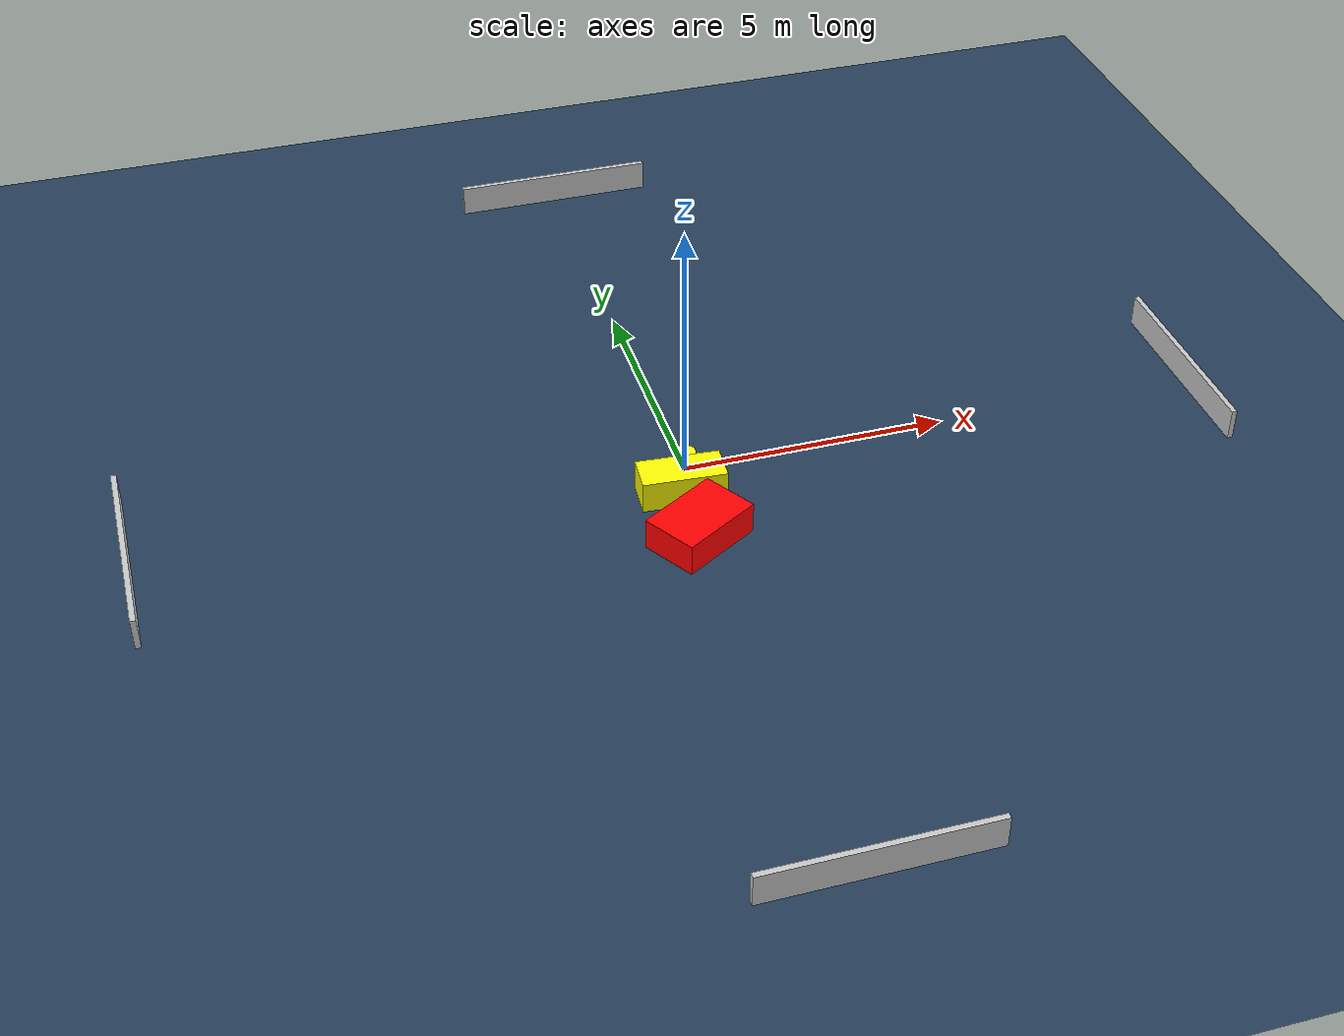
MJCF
<?xml version="1.0" ?>
<mujoco model="generated_environment">
  <option timestep="0.01" integrator="RK4" cone="elliptic"/>
  <default>
    <geom density="1"/>
  </default>
  <asset>
    <texture builtin="gradient" height="3072" name="skybox" rgb1="0.3 0.5 0.7" rgb2="0 0 0" type="skybox" width="512"/>
    <texture builtin="checker" height="300" name="groundplane" rgb1="0.2 0.3 0.4" rgb2="0.1 0.2 0.3" type="2d" width="300"/>
    <material name="groundplane" reflectance="0.2" texrepeat="5 5" texture="groundplane"/>
  </asset>
  <worldbody>
    <light dir="0 0 -1" directional="true" pos="0 0 1.5"/>
    <geom condim="3" friction="0.5 0.005 0.001" material="groundplane" name="floor" pos="0 0 0" size="0 0 0.05" type="plane"/>
    <body name="walls">
      <geom name="wall_1" condim="4" pos="-10.0 0.0 0.3" rgba="0.800000011920929 0.800000011920929 0.800000011920929 1.0" size="0.05 2.0 0.3" type="box"/>
      <geom name="wall_2" condim="4" pos="10.0 0.0 0.3" rgba="0.800000011920929 0.800000011920929 0.800000011920929 1.0" size="0.05 2.0 0.3" type="box"/>
      <geom name="wall_3" condim="4" pos="0.0 -10.0 0.3" rgba="0.800000011920929 0.800000011920929 0.800000011920929 1.0" size="2.0 0.05 0.3" type="box"/>
      <geom name="wall_4" condim="4" pos="0.0 10.0 0.3" rgba="0.800000011920929 0.800000011920929 0.800000011920929 1.0" size="2.0 0.05 0.3" type="box"/>
    </body>
    <body name="robot">
      <joint name="joint_x" type="slide" pos="0 0 0" axis="1 0 0"/>
      <joint name="joint_y" type="slide" pos="0 0 0" axis="0 1 0"/>
      <geom name="robot" type="cylinder" pos="0.0 0.0 0.2" size="0.2 0.2 0.0" mass="5.0" friction="1.0 0.005 0.0001" condim="4" rgba="1.0 1.0 0.0 1.0"/>
    </body>
    <body name="obstacle_1_movable">
      <geom name="obstacle_1_movable" condim="4" pos="-0.2728753161286325 -0.6810566695043705 0.3" euler="0 0 176.05697537356897" friction="0.0 0.005 0.001" rgba="1.0 1.0 0.0 1.0" size="0.7774839465614656 0.35001977263149064 0.3" type="box" mass="0.1"/>
      <joint type="free"/>
    </body>
    <body name="obstacle_2_static">
      <geom name="obstacle_2_static" condim="4" pos="-0.32160322741465336 -1.973944017605822 0.3" euler="0 0 300.8559942621253" friction="0.0 0.005 0.001" rgba="1.0 0.0 0.0 1.0" size="0.5408013407534984 0.7993633937693414 0.3" type="box"/>
    </body>
  </worldbody>
  <actuator>
    <motor name="actuator_x" joint="joint_x" gear="1" ctrlrange="-1 1"/>
    <motor name="actuator_y" joint="joint_y" gear="1" ctrlrange="-1 1"/>
  </actuator>
</mujoco>
